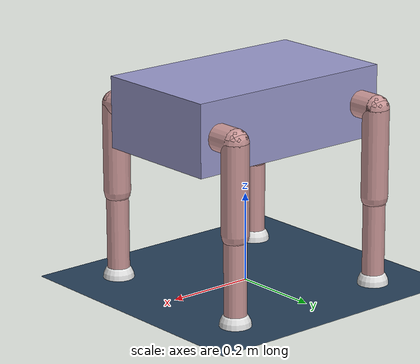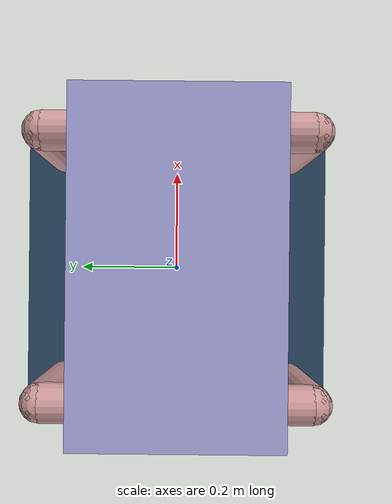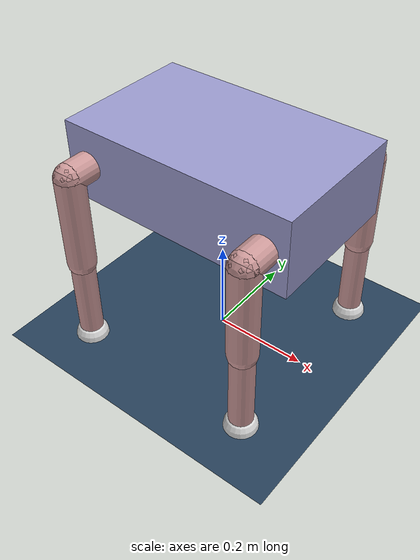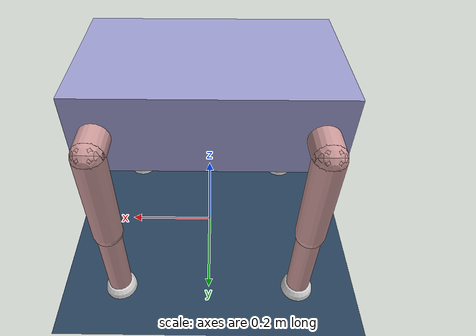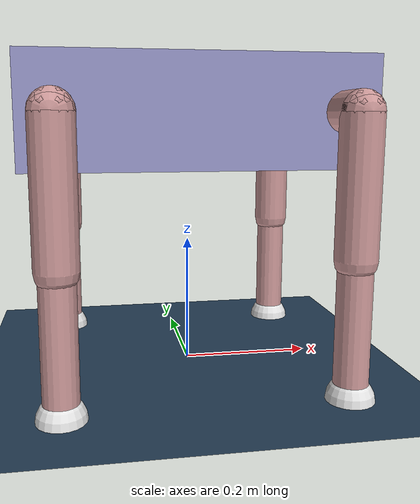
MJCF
<mujoco model="simple_quadruped">
  <compiler angle="radian" coordinate="local" inertiafromgeom="auto"/>
  <option timestep="0.01" gravity="0 0 -9.81"/>

  <default>
    <joint armature="0.1" damping="0.5" limited="true"/>
    <geom contype="0" conaffinity="0" condim="3" density="1000" friction="1 0.1 0.1"/>
  </default>

  <asset>
    <texture type="skybox" builtin="gradient" rgb1="0.3 0.5 0.7" rgb2="0 0 0" width="512" height="512"/>
    <texture name="texplane" type="2d" builtin="checker" rgb1="0.2 0.3 0.4" rgb2="0.1 0.2 0.3" width="512" height="512" mark="cross" markrgb="1 1 1"/>
    <material name="matplane" reflectance="0.3" texture="texplane" texrepeat="1 1" texuniform="true"/>
  </asset>

  <worldbody>
    <geom name="floor" pos="0 0 0" size="50 50 0.1" type="plane" material="matplane" contype="1" conaffinity="1"/>
    <light directional="true" diffuse="0.8 0.8 0.8" specular="0.3 0.3 0.3" pos="0 0 4" dir="0 0 -1"/>

    <!-- Main body -->
    <body name="torso" pos="0 0 0.4">
      <freejoint/>
      <geom name="torso" type="box" size="0.25 0.15 0.08" rgba="0.6 0.6 0.8 1" mass="5.0" contype="1" conaffinity="1"/>
      <camera name="track" mode="targetbody" pos="0 -2 1" xyaxes="1 0 0 0 1 2"/>

      <!-- Front Left Leg -->
      <body name="fl_hip" pos="0.2 0.15 0">
        <joint name="fl_hip" type="hinge" pos="0 0 0" axis="1 0 0" range="-0.7 0.7"/>
        <geom type="capsule" size="0.03" fromto="0 0 0 0 0.05 0" rgba="0.8 0.6 0.6 1" mass="0.5"/>
        <body name="fl_thigh" pos="0 0.05 0">
          <joint name="fl_thigh" type="hinge" pos="0 0 0" axis="0 1 0" range="-1.0 1.5"/>
          <geom type="capsule" size="0.03" fromto="0 0 0 0 0 -0.2" rgba="0.8 0.6 0.6 1" mass="0.8"/>
          <body name="fl_knee" pos="0 0 -0.2">
            <joint name="fl_knee" type="hinge" pos="0 0 0" axis="0 1 0" range="-2.0 -0.2"/>
            <geom type="capsule" size="0.025" fromto="0 0 0 0 0 -0.2" rgba="0.8 0.6 0.6 1" mass="0.5"/>
            <geom name="fl_foot" type="sphere" size="0.035" pos="0 0 -0.2" rgba="0.9 0.9 0.9 1" contype="1" conaffinity="1" condim="3" friction="1.5 0.1 0.1"/>
          </body>
        </body>
      </body>

      <!-- Front Right Leg -->
      <body name="fr_hip" pos="0.2 -0.15 0">
        <joint name="fr_hip" type="hinge" pos="0 0 0" axis="1 0 0" range="-0.7 0.7"/>
        <geom type="capsule" size="0.03" fromto="0 0 0 0 -0.05 0" rgba="0.8 0.6 0.6 1" mass="0.5"/>
        <body name="fr_thigh" pos="0 -0.05 0">
          <joint name="fr_thigh" type="hinge" pos="0 0 0" axis="0 1 0" range="-1.0 1.5"/>
          <geom type="capsule" size="0.03" fromto="0 0 0 0 0 -0.2" rgba="0.8 0.6 0.6 1" mass="0.8"/>
          <body name="fr_knee" pos="0 0 -0.2">
            <joint name="fr_knee" type="hinge" pos="0 0 0" axis="0 1 0" range="-2.0 -0.2"/>
            <geom type="capsule" size="0.025" fromto="0 0 0 0 0 -0.2" rgba="0.8 0.6 0.6 1" mass="0.5"/>
            <geom name="fr_foot" type="sphere" size="0.035" pos="0 0 -0.2" rgba="0.9 0.9 0.9 1" contype="1" conaffinity="1" condim="3" friction="1.5 0.1 0.1"/>
          </body>
        </body>
      </body>

      <!-- Back Left Leg -->
      <body name="bl_hip" pos="-0.2 0.15 0">
        <joint name="bl_hip" type="hinge" pos="0 0 0" axis="1 0 0" range="-0.7 0.7"/>
        <geom type="capsule" size="0.03" fromto="0 0 0 0 0.05 0" rgba="0.8 0.6 0.6 1" mass="0.5"/>
        <body name="bl_thigh" pos="0 0.05 0">
          <joint name="bl_thigh" type="hinge" pos="0 0 0" axis="0 1 0" range="-1.0 1.5"/>
          <geom type="capsule" size="0.03" fromto="0 0 0 0 0 -0.2" rgba="0.8 0.6 0.6 1" mass="0.8"/>
          <body name="bl_knee" pos="0 0 -0.2">
            <joint name="bl_knee" type="hinge" pos="0 0 0" axis="0 1 0" range="-2.0 -0.2"/>
            <geom type="capsule" size="0.025" fromto="0 0 0 0 0 -0.2" rgba="0.8 0.6 0.6 1" mass="0.5"/>
            <geom name="bl_foot" type="sphere" size="0.035" pos="0 0 -0.2" rgba="0.9 0.9 0.9 1" contype="1" conaffinity="1" condim="3" friction="1.5 0.1 0.1"/>
          </body>
        </body>
      </body>

      <!-- Back Right Leg -->
      <body name="br_hip" pos="-0.2 -0.15 0">
        <joint name="br_hip" type="hinge" pos="0 0 0" axis="1 0 0" range="-0.7 0.7"/>
        <geom type="capsule" size="0.03" fromto="0 0 0 0 -0.05 0" rgba="0.8 0.6 0.6 1" mass="0.5"/>
        <body name="br_thigh" pos="0 -0.05 0">
          <joint name="br_thigh" type="hinge" pos="0 0 0" axis="0 1 0" range="-1.0 1.5"/>
          <geom type="capsule" size="0.03" fromto="0 0 0 0 0 -0.2" rgba="0.8 0.6 0.6 1" mass="0.8"/>
          <body name="br_knee" pos="0 0 -0.2">
            <joint name="br_knee" type="hinge" pos="0 0 0" axis="0 1 0" range="-2.0 -0.2"/>
            <geom type="capsule" size="0.025" fromto="0 0 0 0 0 -0.2" rgba="0.8 0.6 0.6 1" mass="0.5"/>
            <geom name="br_foot" type="sphere" size="0.035" pos="0 0 -0.2" rgba="0.9 0.9 0.9 1" contype="1" conaffinity="1" condim="3" friction="1.5 0.1 0.1"/>
          </body>
        </body>
      </body>
    </body>
  </worldbody>

  <actuator>
    <!-- Position servos for all 12 joints -->
    <position name="fl_hip_act" joint="fl_hip" kp="30" kv="5" ctrlrange="-0.7 0.7"/>
    <position name="fl_thigh_act" joint="fl_thigh" kp="30" kv="5" ctrlrange="-1.0 1.5"/>
    <position name="fl_knee_act" joint="fl_knee" kp="30" kv="5" ctrlrange="-2.0 -0.2"/>

    <position name="fr_hip_act" joint="fr_hip" kp="30" kv="5" ctrlrange="-0.7 0.7"/>
    <position name="fr_thigh_act" joint="fr_thigh" kp="30" kv="5" ctrlrange="-1.0 1.5"/>
    <position name="fr_knee_act" joint="fr_knee" kp="30" kv="5" ctrlrange="-2.0 -0.2"/>

    <position name="bl_hip_act" joint="bl_hip" kp="30" kv="5" ctrlrange="-0.7 0.7"/>
    <position name="bl_thigh_act" joint="bl_thigh" kp="30" kv="5" ctrlrange="-1.0 1.5"/>
    <position name="bl_knee_act" joint="bl_knee" kp="30" kv="5" ctrlrange="-2.0 -0.2"/>

    <position name="br_hip_act" joint="br_hip" kp="30" kv="5" ctrlrange="-0.7 0.7"/>
    <position name="br_thigh_act" joint="br_thigh" kp="30" kv="5" ctrlrange="-1.0 1.5"/>
    <position name="br_knee_act" joint="br_knee" kp="30" kv="5" ctrlrange="-2.0 -0.2"/>
  </actuator>
</mujoco>
